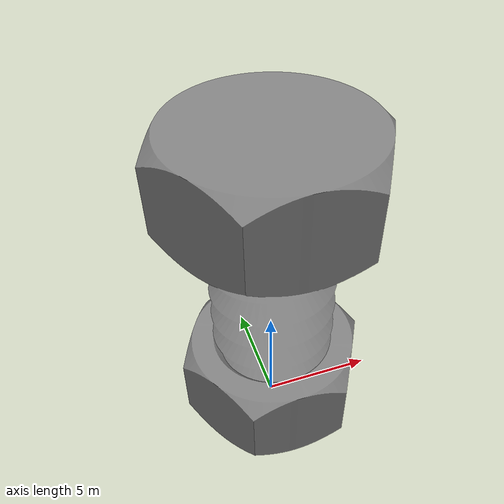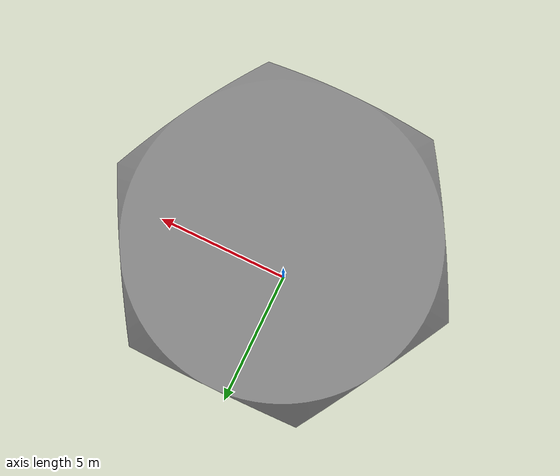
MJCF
<mujoco>
    <asset>
        <mesh file="screw-and-nut/nut-big.obj" name="screw-and-nut/nut-big"/>
        <mesh file="screw-and-nut/screw-big.obj" name="screw-and-nut/screw-big"/>
    </asset>
    <worldbody>
        <body pos="-0 0 0" quat="0 0 0.707107 0.707107">
            <geom mesh="screw-and-nut/nut-big" type="mesh" size="0.010000 0.010000 0.010000" density="8050.000000"/>
            <inertial mass="0"/>
        </body>
        <body pos="-0 0 0" quat="0 0 0.707107 0.707107">
            <geom mesh="screw-and-nut/screw-big" type="mesh" size="0.010000 0.010000 0.010000" density="8050.000000"/>
        </body>
    </worldbody>
</mujoco>
